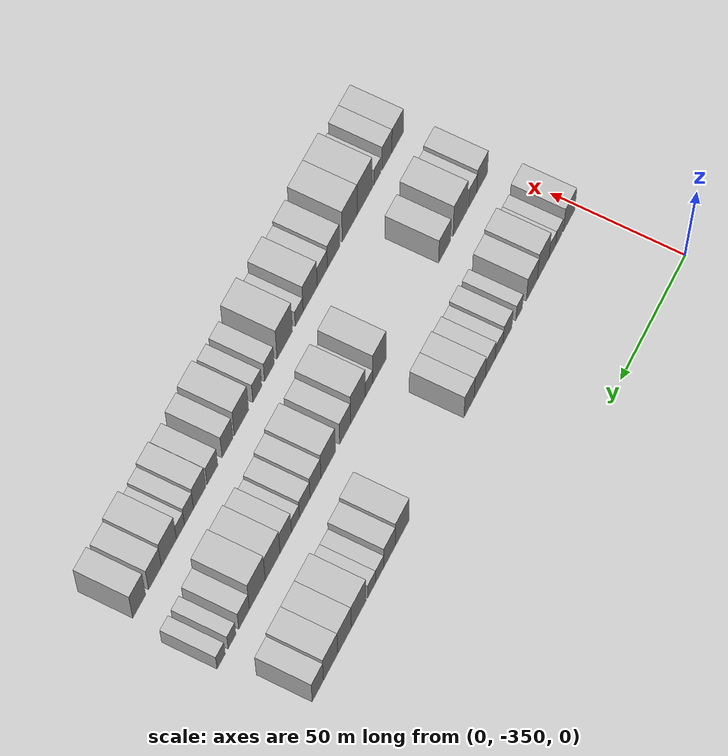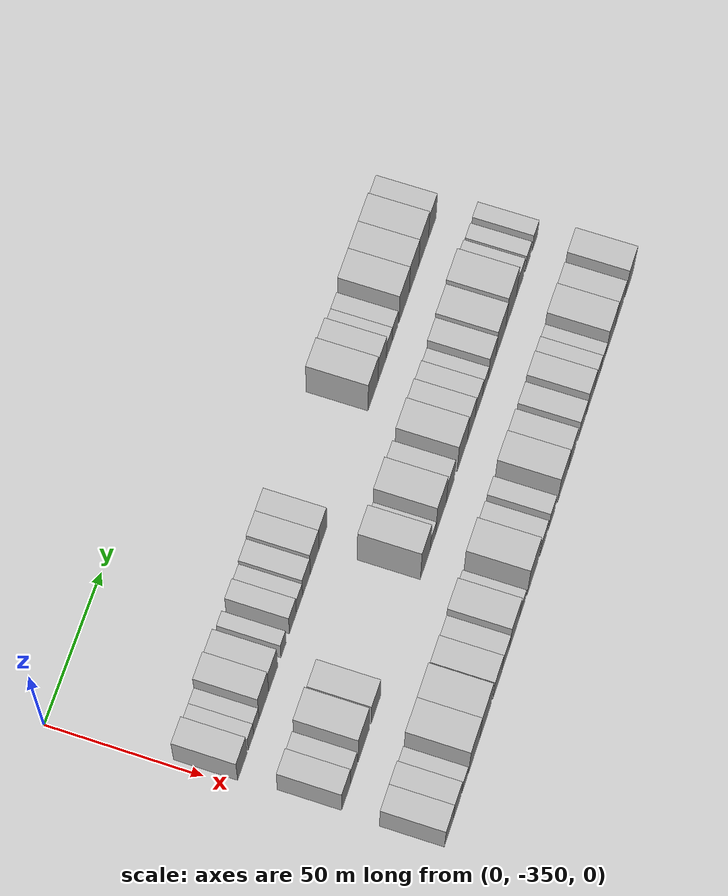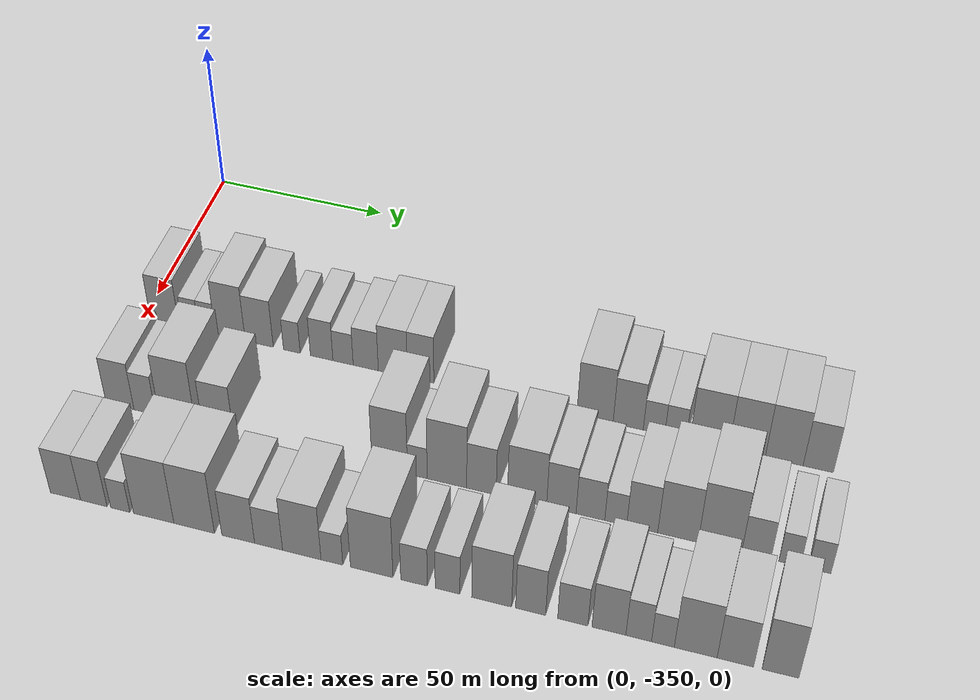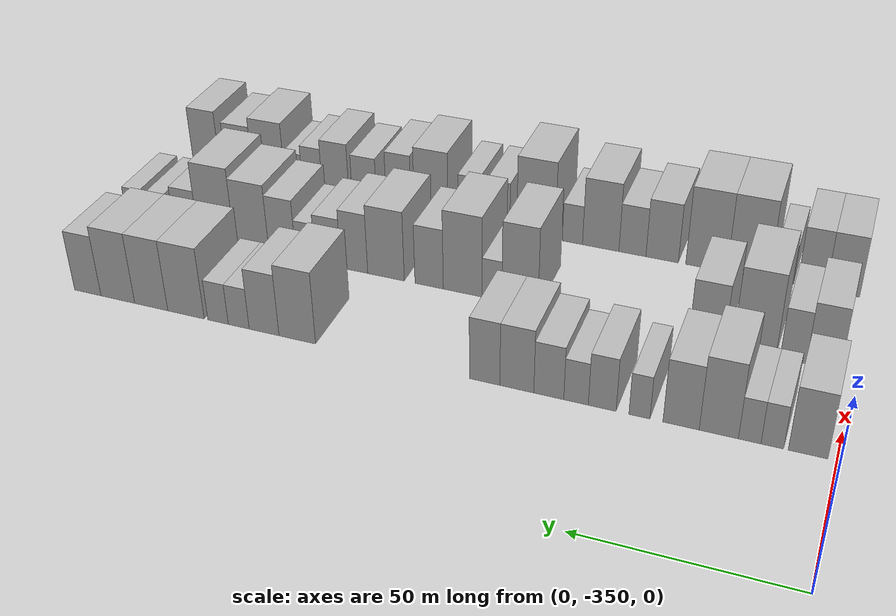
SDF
<sdf version="1.6">
 <world name="default">
  <model name="building_1">
   <static>1</static>
   <pose>50.0000 -343.6873 0 0.000000 0.000000 0.000000</pose>
   <link name="link">
    <pose>0 0 9.00 0 0 0</pose>
    <collision name="collision"><geometry><box><size>20.0000 8.6254 18.0000</size></box></geometry></collision>
    <visual name="visual">
     <cast_shadows>0</cast_shadows>
     <geometry><box><size>20.0000 8.6254 18.0000</size></box></geometry>
     <material>
      <script>
       <uri>model://HANNAS_wall/materials/scripts</uri>
       <uri>model://HANNAS_wall/materials/textures</uri>
       <name>vrc/HANNAS_wall</name>
      </script>
     </material>
    </visual>
   </link>
  </model>
  <model name="building_2">
   <static>1</static>
   <pose>50.0000 -335.8789 0 0.000000 0.000000 0.000000</pose>
   <link name="link">
    <pose>0 0 6.00 0 0 0</pose>
    <collision name="collision"><geometry><box><size>20.0000 4.9914 12.0000</size></box></geometry></collision>
    <visual name="visual">
     <cast_shadows>0</cast_shadows>
     <geometry><box><size>20.0000 4.9914 12.0000</size></box></geometry>
     <material>
      <script>
       <uri>model://HANNAS_wall/materials/scripts</uri>
       <uri>model://HANNAS_wall/materials/textures</uri>
       <name>vrc/HANNAS_wall</name>
      </script>
     </material>
    </visual>
   </link>
  </model>
  <model name="building_3">
   <static>1</static>
   <pose>50.0000 -330.8785 0 0.000000 0.000000 0.000000</pose>
   <link name="link">
    <pose>0 0 6.00 0 0 0</pose>
    <collision name="collision"><geometry><box><size>20.0000 5.0094 12.0000</size></box></geometry></collision>
    <visual name="visual">
     <cast_shadows>0</cast_shadows>
     <geometry><box><size>20.0000 5.0094 12.0000</size></box></geometry>
     <material>
      <script>
       <uri>model://HANNAS_wall/materials/scripts</uri>
       <uri>model://HANNAS_wall/materials/textures</uri>
       <name>vrc/HANNAS_wall</name>
      </script>
     </material>
    </visual>
   </link>
  </model>
  <model name="building_4">
   <static>1</static>
   <pose>50.0000 -323.9568 0 0.000000 0.000000 0.000000</pose>
   <link name="link">
    <pose>0 0 10.50 0 0 0</pose>
    <collision name="collision"><geometry><box><size>20.0000 8.8341 21.0000</size></box></geometry></collision>
    <visual name="visual">
     <cast_shadows>0</cast_shadows>
     <geometry><box><size>20.0000 8.8341 21.0000</size></box></geometry>
     <material>
      <script>
       <uri>model://HANNAS_wall/materials/scripts</uri>
       <uri>model://HANNAS_wall/materials/textures</uri>
       <name>vrc/HANNAS_wall</name>
      </script>
     </material>
    </visual>
   </link>
  </model>
  <model name="building_5">
   <static>1</static>
   <pose>50.0000 -315.3958 0 0.000000 0.000000 0.000000</pose>
   <link name="link">
    <pose>0 0 9.00 0 0 0</pose>
    <collision name="collision"><geometry><box><size>20.0000 8.2878 18.0000</size></box></geometry></collision>
    <visual name="visual">
     <cast_shadows>0</cast_shadows>
     <geometry><box><size>20.0000 8.2878 18.0000</size></box></geometry>
     <material>
      <script>
       <uri>model://HANNAS_wall/materials/scripts</uri>
       <uri>model://HANNAS_wall/materials/textures</uri>
       <name>vrc/HANNAS_wall</name>
      </script>
     </material>
    </visual>
   </link>
  </model>
  <model name="building_6">
   <static>1</static>
   <pose>50.0000 -305.8046 0 0.000000 0.000000 0.000000</pose>
   <link name="link">
    <pose>0 0 6.00 0 0 0</pose>
    <collision name="collision"><geometry><box><size>20.0000 4.8945 12.0000</size></box></geometry></collision>
    <visual name="visual">
     <cast_shadows>0</cast_shadows>
     <geometry><box><size>20.0000 4.8945 12.0000</size></box></geometry>
     <material>
      <script>
       <uri>model://HANNAS_wall/materials/scripts</uri>
       <uri>model://HANNAS_wall/materials/textures</uri>
       <name>vrc/HANNAS_wall</name>
      </script>
     </material>
    </visual>
   </link>
  </model>
  <model name="building_7">
   <static>1</static>
   <pose>50.0000 -297.0753 0 0.000000 0.000000 0.000000</pose>
   <link name="link">
    <pose>0 0 7.50 0 0 0</pose>
    <collision name="collision"><geometry><box><size>20.0000 6.5640 15.0000</size></box></geometry></collision>
    <visual name="visual">
     <cast_shadows>0</cast_shadows>
     <geometry><box><size>20.0000 6.5640 15.0000</size></box></geometry>
     <material>
      <script>
       <uri>model://HANNAS_wall/materials/scripts</uri>
       <uri>model://HANNAS_wall/materials/textures</uri>
       <name>vrc/HANNAS_wall</name>
      </script>
     </material>
    </visual>
   </link>
  </model>
  <model name="building_8">
   <static>1</static>
   <pose>50.0000 -290.8603 0 0.000000 0.000000 0.000000</pose>
   <link name="link">
    <pose>0 0 6.00 0 0 0</pose>
    <collision name="collision"><geometry><box><size>20.0000 5.8660 12.0000</size></box></geometry></collision>
    <visual name="visual">
     <cast_shadows>0</cast_shadows>
     <geometry><box><size>20.0000 5.8660 12.0000</size></box></geometry>
     <material>
      <script>
       <uri>model://HANNAS_wall/materials/scripts</uri>
       <uri>model://HANNAS_wall/materials/textures</uri>
       <name>vrc/HANNAS_wall</name>
      </script>
     </material>
    </visual>
   </link>
  </model>
  <model name="building_9">
   <static>1</static>
   <pose>50.0000 -284.3061 0 0.000000 0.000000 0.000000</pose>
   <link name="link">
    <pose>0 0 7.50 0 0 0</pose>
    <collision name="collision"><geometry><box><size>20.0000 7.2424 15.0000</size></box></geometry></collision>
    <visual name="visual">
     <cast_shadows>0</cast_shadows>
     <geometry><box><size>20.0000 7.2424 15.0000</size></box></geometry>
     <material>
      <script>
       <uri>model://HANNAS_wall/materials/scripts</uri>
       <uri>model://HANNAS_wall/materials/textures</uri>
       <name>vrc/HANNAS_wall</name>
      </script>
     </material>
    </visual>
   </link>
  </model>
  <model name="building_10">
   <static>1</static>
   <pose>50.0000 -276.5179 0 0.000000 0.000000 0.000000</pose>
   <link name="link">
    <pose>0 0 9.00 0 0 0</pose>
    <collision name="collision"><geometry><box><size>20.0000 8.3341 18.0000</size></box></geometry></collision>
    <visual name="visual">
     <cast_shadows>0</cast_shadows>
     <geometry><box><size>20.0000 8.3341 18.0000</size></box></geometry>
     <material>
      <script>
       <uri>model://HANNAS_wall/materials/scripts</uri>
       <uri>model://HANNAS_wall/materials/textures</uri>
       <name>vrc/HANNAS_wall</name>
      </script>
     </material>
    </visual>
   </link>
  </model>
  <model name="building_11">
   <static>1</static>
   <pose>50.0000 -268.5844 0 0.000000 0.000000 0.000000</pose>
   <link name="link">
    <pose>0 0 9.00 0 0 0</pose>
    <collision name="collision"><geometry><box><size>20.0000 7.5328 18.0000</size></box></geometry></collision>
    <visual name="visual">
     <cast_shadows>0</cast_shadows>
     <geometry><box><size>20.0000 7.5328 18.0000</size></box></geometry>
     <material>
      <script>
       <uri>model://HANNAS_wall/materials/scripts</uri>
       <uri>model://HANNAS_wall/materials/textures</uri>
       <name>vrc/HANNAS_wall</name>
      </script>
     </material>
    </visual>
   </link>
  </model>
  <model name="building_12">
   <static>1</static>
   <pose>50.0000 -219.9695 0 0.000000 0.000000 0.000000</pose>
   <link name="link">
    <pose>0 0 10.50 0 0 0</pose>
    <collision name="collision"><geometry><box><size>20.0000 9.8990 21.0000</size></box></geometry></collision>
    <visual name="visual">
     <cast_shadows>0</cast_shadows>
     <geometry><box><size>20.0000 9.8990 21.0000</size></box></geometry>
     <material>
      <script>
       <uri>model://HANNAS_wall/materials/scripts</uri>
       <uri>model://HANNAS_wall/materials/textures</uri>
       <name>vrc/HANNAS_wall</name>
      </script>
     </material>
    </visual>
   </link>
  </model>
  <model name="building_13">
   <static>1</static>
   <pose>50.0000 -210.9266 0 0.000000 0.000000 0.000000</pose>
   <link name="link">
    <pose>0 0 9.00 0 0 0</pose>
    <collision name="collision"><geometry><box><size>20.0000 8.1867 18.0000</size></box></geometry></collision>
    <visual name="visual">
     <cast_shadows>0</cast_shadows>
     <geometry><box><size>20.0000 8.1867 18.0000</size></box></geometry>
     <material>
      <script>
       <uri>model://HANNAS_wall/materials/scripts</uri>
       <uri>model://HANNAS_wall/materials/textures</uri>
       <name>vrc/HANNAS_wall</name>
      </script>
     </material>
    </visual>
   </link>
  </model>
  <model name="building_14">
   <static>1</static>
   <pose>50.0000 -203.9265 0 0.000000 0.000000 0.000000</pose>
   <link name="link">
    <pose>0 0 6.00 0 0 0</pose>
    <collision name="collision"><geometry><box><size>20.0000 5.8134 12.0000</size></box></geometry></collision>
    <visual name="visual">
     <cast_shadows>0</cast_shadows>
     <geometry><box><size>20.0000 5.8134 12.0000</size></box></geometry>
     <material>
      <script>
       <uri>model://HANNAS_wall/materials/scripts</uri>
       <uri>model://HANNAS_wall/materials/textures</uri>
       <name>vrc/HANNAS_wall</name>
      </script>
     </material>
    </visual>
   </link>
  </model>
  <model name="building_15">
   <static>1</static>
   <pose>50.0000 -198.1525 0 0.000000 0.000000 0.000000</pose>
   <link name="link">
    <pose>0 0 6.00 0 0 0</pose>
    <collision name="collision"><geometry><box><size>20.0000 5.7346 12.0000</size></box></geometry></collision>
    <visual name="visual">
     <cast_shadows>0</cast_shadows>
     <geometry><box><size>20.0000 5.7346 12.0000</size></box></geometry>
     <material>
      <script>
       <uri>model://HANNAS_wall/materials/scripts</uri>
       <uri>model://HANNAS_wall/materials/textures</uri>
       <name>vrc/HANNAS_wall</name>
      </script>
     </material>
    </visual>
   </link>
  </model>
  <model name="building_16">
   <static>1</static>
   <pose>50.0000 -189.0835 0 0.000000 0.000000 0.000000</pose>
   <link name="link">
    <pose>0 0 10.50 0 0 0</pose>
    <collision name="collision"><geometry><box><size>20.0000 10.4035 21.0000</size></box></geometry></collision>
    <visual name="visual">
     <cast_shadows>0</cast_shadows>
     <geometry><box><size>20.0000 10.4035 21.0000</size></box></geometry>
     <material>
      <script>
       <uri>model://HANNAS_wall/materials/scripts</uri>
       <uri>model://HANNAS_wall/materials/textures</uri>
       <name>vrc/HANNAS_wall</name>
      </script>
     </material>
    </visual>
   </link>
  </model>
  <model name="building_17">
   <static>1</static>
   <pose>50.0000 -179.0942 0 0.000000 0.000000 0.000000</pose>
   <link name="link">
    <pose>0 0 10.50 0 0 0</pose>
    <collision name="collision"><geometry><box><size>20.0000 9.5750 21.0000</size></box></geometry></collision>
    <visual name="visual">
     <cast_shadows>0</cast_shadows>
     <geometry><box><size>20.0000 9.5750 21.0000</size></box></geometry>
     <material>
      <script>
       <uri>model://HANNAS_wall/materials/scripts</uri>
       <uri>model://HANNAS_wall/materials/textures</uri>
       <name>vrc/HANNAS_wall</name>
      </script>
     </material>
    </visual>
   </link>
  </model>
  <model name="building_18">
   <static>1</static>
   <pose>50.0000 -169.3435 0 0.000000 0.000000 0.000000</pose>
   <link name="link">
    <pose>0 0 10.50 0 0 0</pose>
    <collision name="collision"><geometry><box><size>20.0000 9.9265 21.0000</size></box></geometry></collision>
    <visual name="visual">
     <cast_shadows>0</cast_shadows>
     <geometry><box><size>20.0000 9.9265 21.0000</size></box></geometry>
     <material>
      <script>
       <uri>model://HANNAS_wall/materials/scripts</uri>
       <uri>model://HANNAS_wall/materials/textures</uri>
       <name>vrc/HANNAS_wall</name>
      </script>
     </material>
    </visual>
   </link>
  </model>
  <model name="building_19">
   <static>1</static>
   <pose>50.0000 -160.4506 0 0.000000 0.000000 0.000000</pose>
   <link name="link">
    <pose>0 0 9.00 0 0 0</pose>
    <collision name="collision"><geometry><box><size>20.0000 7.8593 18.0000</size></box></geometry></collision>
    <visual name="visual">
     <cast_shadows>0</cast_shadows>
     <geometry><box><size>20.0000 7.8593 18.0000</size></box></geometry>
     <material>
      <script>
       <uri>model://HANNAS_wall/materials/scripts</uri>
       <uri>model://HANNAS_wall/materials/textures</uri>
       <name>vrc/HANNAS_wall</name>
      </script>
     </material>
    </visual>
   </link>
  </model>
  <model name="building_76">
   <static>1</static>
   <pose>82.0000 -342.9451 0 0.000000 0.000000 0.000000</pose>
   <link name="link">
    <pose>0 0 9.00 0 0 0</pose>
    <collision name="collision"><geometry><box><size>20.0000 8.1097 18.0000</size></box></geometry></collision>
    <visual name="visual">
     <cast_shadows>0</cast_shadows>
     <geometry><box><size>20.0000 8.1097 18.0000</size></box></geometry>
     <material>
      <script>
       <uri>model://HANNAS_wall/materials/scripts</uri>
       <uri>model://HANNAS_wall/materials/textures</uri>
       <name>vrc/HANNAS_wall</name>
      </script>
     </material>
    </visual>
   </link>
  </model>
  <model name="building_77">
   <static>1</static>
   <pose>82.0000 -335.7590 0 0.000000 0.000000 0.000000</pose>
   <link name="link">
    <pose>0 0 7.50 0 0 0</pose>
    <collision name="collision"><geometry><box><size>20.0000 6.2625 15.0000</size></box></geometry></collision>
    <visual name="visual">
     <cast_shadows>0</cast_shadows>
     <geometry><box><size>20.0000 6.2625 15.0000</size></box></geometry>
     <material>
      <script>
       <uri>model://HANNAS_wall/materials/scripts</uri>
       <uri>model://HANNAS_wall/materials/textures</uri>
       <name>vrc/HANNAS_wall</name>
      </script>
     </material>
    </visual>
   </link>
  </model>
  <model name="building_78">
   <static>1</static>
   <pose>82.0000 -326.4272 0 0.000000 0.000000 0.000000</pose>
   <link name="link">
    <pose>0 0 12.00 0 0 0</pose>
    <collision name="collision"><geometry><box><size>20.0000 10.4010 24.0000</size></box></geometry></collision>
    <visual name="visual">
     <cast_shadows>0</cast_shadows>
     <geometry><box><size>20.0000 10.4010 24.0000</size></box></geometry>
     <material>
      <script>
       <uri>model://HANNAS_wall/materials/scripts</uri>
       <uri>model://HANNAS_wall/materials/textures</uri>
       <name>vrc/HANNAS_wall</name>
      </script>
     </material>
    </visual>
   </link>
  </model>
  <model name="building_79">
   <static>1</static>
   <pose>82.0000 -314.8229 0 0.000000 0.000000 0.000000</pose>
   <link name="link">
    <pose>0 0 9.00 0 0 0</pose>
    <collision name="collision"><geometry><box><size>20.0000 8.8075 18.0000</size></box></geometry></collision>
    <visual name="visual">
     <cast_shadows>0</cast_shadows>
     <geometry><box><size>20.0000 8.8075 18.0000</size></box></geometry>
     <material>
      <script>
       <uri>model://HANNAS_wall/materials/scripts</uri>
       <uri>model://HANNAS_wall/materials/textures</uri>
       <name>vrc/HANNAS_wall</name>
      </script>
     </material>
    </visual>
   </link>
  </model>
  <model name="building_80">
   <static>1</static>
   <pose>82.0000 -266.9277 0 0.000000 0.000000 0.000000</pose>
   <link name="link">
    <pose>0 0 12.00 0 0 0</pose>
    <collision name="collision"><geometry><box><size>20.0000 9.6610 24.0000</size></box></geometry></collision>
    <visual name="visual">
     <cast_shadows>0</cast_shadows>
     <geometry><box><size>20.0000 9.6610 24.0000</size></box></geometry>
     <material>
      <script>
       <uri>model://HANNAS_wall/materials/scripts</uri>
       <uri>model://HANNAS_wall/materials/textures</uri>
       <name>vrc/HANNAS_wall</name>
      </script>
     </material>
    </visual>
   </link>
  </model>
  <model name="building_81">
   <static>1</static>
   <pose>82.0000 -259.4279 0 0.000000 0.000000 0.000000</pose>
   <link name="link">
    <pose>0 0 6.00 0 0 0</pose>
    <collision name="collision"><geometry><box><size>20.0000 5.3387 12.0000</size></box></geometry></collision>
    <visual name="visual">
     <cast_shadows>0</cast_shadows>
     <geometry><box><size>20.0000 5.3387 12.0000</size></box></geometry>
     <material>
      <script>
       <uri>model://HANNAS_wall/materials/scripts</uri>
       <uri>model://HANNAS_wall/materials/textures</uri>
       <name>vrc/HANNAS_wall</name>
      </script>
     </material>
    </visual>
   </link>
  </model>
  <model name="building_82">
   <static>1</static>
   <pose>82.0000 -251.4545 0 0.000000 0.000000 0.000000</pose>
   <link name="link">
    <pose>0 0 12.00 0 0 0</pose>
    <collision name="collision"><geometry><box><size>20.0000 10.6079 24.0000</size></box></geometry></collision>
    <visual name="visual">
     <cast_shadows>0</cast_shadows>
     <geometry><box><size>20.0000 10.6079 24.0000</size></box></geometry>
     <material>
      <script>
       <uri>model://HANNAS_wall/materials/scripts</uri>
       <uri>model://HANNAS_wall/materials/textures</uri>
       <name>vrc/HANNAS_wall</name>
      </script>
     </material>
    </visual>
   </link>
  </model>
  <model name="building_83">
   <static>1</static>
   <pose>82.0000 -242.2172 0 0.000000 0.000000 0.000000</pose>
   <link name="link">
    <pose>0 0 9.00 0 0 0</pose>
    <collision name="collision"><geometry><box><size>20.0000 7.8668 18.0000</size></box></geometry></collision>
    <visual name="visual">
     <cast_shadows>0</cast_shadows>
     <geometry><box><size>20.0000 7.8668 18.0000</size></box></geometry>
     <material>
      <script>
       <uri>model://HANNAS_wall/materials/scripts</uri>
       <uri>model://HANNAS_wall/materials/textures</uri>
       <name>vrc/HANNAS_wall</name>
      </script>
     </material>
    </visual>
   </link>
  </model>
  <model name="building_84">
   <static>1</static>
   <pose>82.0000 -230.1115 0 0.000000 0.000000 0.000000</pose>
   <link name="link">
    <pose>0 0 10.50 0 0 0</pose>
    <collision name="collision"><geometry><box><size>20.0000 10.3445 21.0000</size></box></geometry></collision>
    <visual name="visual">
     <cast_shadows>0</cast_shadows>
     <geometry><box><size>20.0000 10.3445 21.0000</size></box></geometry>
     <material>
      <script>
       <uri>model://HANNAS_wall/materials/scripts</uri>
       <uri>model://HANNAS_wall/materials/textures</uri>
       <name>vrc/HANNAS_wall</name>
      </script>
     </material>
    </visual>
   </link>
  </model>
  <model name="building_85">
   <static>1</static>
   <pose>82.0000 -221.0768 0 0.000000 0.000000 0.000000</pose>
   <link name="link">
    <pose>0 0 9.00 0 0 0</pose>
    <collision name="collision"><geometry><box><size>20.0000 7.7249 18.0000</size></box></geometry></collision>
    <visual name="visual">
     <cast_shadows>0</cast_shadows>
     <geometry><box><size>20.0000 7.7249 18.0000</size></box></geometry>
     <material>
      <script>
       <uri>model://HANNAS_wall/materials/scripts</uri>
       <uri>model://HANNAS_wall/materials/textures</uri>
       <name>vrc/HANNAS_wall</name>
      </script>
     </material>
    </visual>
   </link>
  </model>
  <model name="building_86">
   <static>1</static>
   <pose>82.0000 -213.4769 0 0.000000 0.000000 0.000000</pose>
   <link name="link">
    <pose>0 0 7.50 0 0 0</pose>
    <collision name="collision"><geometry><box><size>20.0000 7.4748 15.0000</size></box></geometry></collision>
    <visual name="visual">
     <cast_shadows>0</cast_shadows>
     <geometry><box><size>20.0000 7.4748 15.0000</size></box></geometry>
     <material>
      <script>
       <uri>model://HANNAS_wall/materials/scripts</uri>
       <uri>model://HANNAS_wall/materials/textures</uri>
       <name>vrc/HANNAS_wall</name>
      </script>
     </material>
    </visual>
   </link>
  </model>
  <model name="building_87">
   <static>1</static>
   <pose>82.0000 -206.9055 0 0.000000 0.000000 0.000000</pose>
   <link name="link">
    <pose>0 0 6.00 0 0 0</pose>
    <collision name="collision"><geometry><box><size>20.0000 5.6679 12.0000</size></box></geometry></collision>
    <visual name="visual">
     <cast_shadows>0</cast_shadows>
     <geometry><box><size>20.0000 5.6679 12.0000</size></box></geometry>
     <material>
      <script>
       <uri>model://HANNAS_wall/materials/scripts</uri>
       <uri>model://HANNAS_wall/materials/textures</uri>
       <name>vrc/HANNAS_wall</name>
      </script>
     </material>
    </visual>
   </link>
  </model>
  <model name="building_88">
   <static>1</static>
   <pose>82.0000 -200.0838 0 0.000000 0.000000 0.000000</pose>
   <link name="link">
    <pose>0 0 9.00 0 0 0</pose>
    <collision name="collision"><geometry><box><size>20.0000 7.9754 18.0000</size></box></geometry></collision>
    <visual name="visual">
     <cast_shadows>0</cast_shadows>
     <geometry><box><size>20.0000 7.9754 18.0000</size></box></geometry>
     <material>
      <script>
       <uri>model://HANNAS_wall/materials/scripts</uri>
       <uri>model://HANNAS_wall/materials/textures</uri>
       <name>vrc/HANNAS_wall</name>
      </script>
     </material>
    </visual>
   </link>
  </model>
  <model name="building_89">
   <static>1</static>
   <pose>82.0000 -190.9400 0 0.000000 0.000000 0.000000</pose>
   <link name="link">
    <pose>0 0 10.50 0 0 0</pose>
    <collision name="collision"><geometry><box><size>20.0000 10.3121 21.0000</size></box></geometry></collision>
    <visual name="visual">
     <cast_shadows>0</cast_shadows>
     <geometry><box><size>20.0000 10.3121 21.0000</size></box></geometry>
     <material>
      <script>
       <uri>model://HANNAS_wall/materials/scripts</uri>
       <uri>model://HANNAS_wall/materials/textures</uri>
       <name>vrc/HANNAS_wall</name>
      </script>
     </material>
    </visual>
   </link>
  </model>
  <model name="building_90">
   <static>1</static>
   <pose>82.0000 -180.2757 0 0.000000 0.000000 0.000000</pose>
   <link name="link">
    <pose>0 0 12.00 0 0 0</pose>
    <collision name="collision"><geometry><box><size>20.0000 11.0167 24.0000</size></box></geometry></collision>
    <visual name="visual">
     <cast_shadows>0</cast_shadows>
     <geometry><box><size>20.0000 11.0167 24.0000</size></box></geometry>
     <material>
      <script>
       <uri>model://HANNAS_wall/materials/scripts</uri>
       <uri>model://HANNAS_wall/materials/textures</uri>
       <name>vrc/HANNAS_wall</name>
      </script>
     </material>
    </visual>
   </link>
  </model>
  <model name="building_91">
   <static>1</static>
   <pose>82.0000 -171.1097 0 0.000000 0.000000 0.000000</pose>
   <link name="link">
    <pose>0 0 7.50 0 0 0</pose>
    <collision name="collision"><geometry><box><size>20.0000 7.3153 15.0000</size></box></geometry></collision>
    <visual name="visual">
     <cast_shadows>0</cast_shadows>
     <geometry><box><size>20.0000 7.3153 15.0000</size></box></geometry>
     <material>
      <script>
       <uri>model://HANNAS_wall/materials/scripts</uri>
       <uri>model://HANNAS_wall/materials/textures</uri>
       <name>vrc/HANNAS_wall</name>
      </script>
     </material>
    </visual>
   </link>
  </model>
  <model name="building_92">
   <static>1</static>
   <pose>82.0000 -162.7791 0 0.000000 0.000000 0.000000</pose>
   <link name="link">
    <pose>0 0 6.00 0 0 0</pose>
    <collision name="collision"><geometry><box><size>20.0000 5.3459 12.0000</size></box></geometry></collision>
    <visual name="visual">
     <cast_shadows>0</cast_shadows>
     <geometry><box><size>20.0000 5.3459 12.0000</size></box></geometry>
     <material>
      <script>
       <uri>model://HANNAS_wall/materials/scripts</uri>
       <uri>model://HANNAS_wall/materials/textures</uri>
       <name>vrc/HANNAS_wall</name>
      </script>
     </material>
    </visual>
   </link>
  </model>
  <model name="building_93">
   <static>1</static>
   <pose>82.0000 -155.3206 0 0.000000 0.000000 0.000000</pose>
   <link name="link">
    <pose>0 0 6.00 0 0 0</pose>
    <collision name="collision"><geometry><box><size>20.0000 5.5711 12.0000</size></box></geometry></collision>
    <visual name="visual">
     <cast_shadows>0</cast_shadows>
     <geometry><box><size>20.0000 5.5711 12.0000</size></box></geometry>
     <material>
      <script>
       <uri>model://HANNAS_wall/materials/scripts</uri>
       <uri>model://HANNAS_wall/materials/textures</uri>
       <name>vrc/HANNAS_wall</name>
      </script>
     </material>
    </visual>
   </link>
  </model>
  <model name="building_153">
   <static>1</static>
   <pose>114.0000 -343.7625 0 0.000000 0.000000 0.000000</pose>
   <link name="link">
    <pose>0 0 9.00 0 0 0</pose>
    <collision name="collision"><geometry><box><size>20.0000 8.4751 18.0000</size></box></geometry></collision>
    <visual name="visual">
     <cast_shadows>0</cast_shadows>
     <geometry><box><size>20.0000 8.4751 18.0000</size></box></geometry>
     <material>
      <script>
       <uri>model://HANNAS_wall/materials/scripts</uri>
       <uri>model://HANNAS_wall/materials/textures</uri>
       <name>vrc/HANNAS_wall</name>
      </script>
     </material>
    </visual>
   </link>
  </model>
  <model name="building_154">
   <static>1</static>
   <pose>114.0000 -335.8613 0 0.000000 0.000000 0.000000</pose>
   <link name="link">
    <pose>0 0 9.00 0 0 0</pose>
    <collision name="collision"><geometry><box><size>20.0000 7.3272 18.0000</size></box></geometry></collision>
    <visual name="visual">
     <cast_shadows>0</cast_shadows>
     <geometry><box><size>20.0000 7.3272 18.0000</size></box></geometry>
     <material>
      <script>
       <uri>model://HANNAS_wall/materials/scripts</uri>
       <uri>model://HANNAS_wall/materials/textures</uri>
       <name>vrc/HANNAS_wall</name>
      </script>
     </material>
    </visual>
   </link>
  </model>
  <model name="building_155">
   <static>1</static>
   <pose>114.0000 -328.5517 0 0.000000 0.000000 0.000000</pose>
   <link name="link">
    <pose>0 0 6.00 0 0 0</pose>
    <collision name="collision"><geometry><box><size>20.0000 5.2921 12.0000</size></box></geometry></collision>
    <visual name="visual">
     <cast_shadows>0</cast_shadows>
     <geometry><box><size>20.0000 5.2921 12.0000</size></box></geometry>
     <material>
      <script>
       <uri>model://HANNAS_wall/materials/scripts</uri>
       <uri>model://HANNAS_wall/materials/textures</uri>
       <name>vrc/HANNAS_wall</name>
      </script>
     </material>
    </visual>
   </link>
  </model>
  <model name="building_156">
   <static>1</static>
   <pose>114.0000 -319.3706 0 0.000000 0.000000 0.000000</pose>
   <link name="link">
    <pose>0 0 12.00 0 0 0</pose>
    <collision name="collision"><geometry><box><size>20.0000 11.0702 24.0000</size></box></geometry></collision>
    <visual name="visual">
     <cast_shadows>0</cast_shadows>
     <geometry><box><size>20.0000 11.0702 24.0000</size></box></geometry>
     <material>
      <script>
       <uri>model://HANNAS_wall/materials/scripts</uri>
       <uri>model://HANNAS_wall/materials/textures</uri>
       <name>vrc/HANNAS_wall</name>
      </script>
     </material>
    </visual>
   </link>
  </model>
  <model name="building_157">
   <static>1</static>
   <pose>114.0000 -308.3364 0 0.000000 0.000000 0.000000</pose>
   <link name="link">
    <pose>0 0 12.00 0 0 0</pose>
    <collision name="collision"><geometry><box><size>20.0000 10.9980 24.0000</size></box></geometry></collision>
    <visual name="visual">
     <cast_shadows>0</cast_shadows>
     <geometry><box><size>20.0000 10.9980 24.0000</size></box></geometry>
     <material>
      <script>
       <uri>model://HANNAS_wall/materials/scripts</uri>
       <uri>model://HANNAS_wall/materials/textures</uri>
       <name>vrc/HANNAS_wall</name>
      </script>
     </material>
    </visual>
   </link>
  </model>
  <model name="building_158">
   <static>1</static>
   <pose>114.0000 -296.4344 0 0.000000 0.000000 0.000000</pose>
   <link name="link">
    <pose>0 0 9.00 0 0 0</pose>
    <collision name="collision"><geometry><box><size>20.0000 8.8060 18.0000</size></box></geometry></collision>
    <visual name="visual">
     <cast_shadows>0</cast_shadows>
     <geometry><box><size>20.0000 8.8060 18.0000</size></box></geometry>
     <material>
      <script>
       <uri>model://HANNAS_wall/materials/scripts</uri>
       <uri>model://HANNAS_wall/materials/textures</uri>
       <name>vrc/HANNAS_wall</name>
      </script>
     </material>
    </visual>
   </link>
  </model>
  <model name="building_159">
   <static>1</static>
   <pose>114.0000 -288.3090 0 0.000000 0.000000 0.000000</pose>
   <link name="link">
    <pose>0 0 7.50 0 0 0</pose>
    <collision name="collision"><geometry><box><size>20.0000 7.4449 15.0000</size></box></geometry></collision>
    <visual name="visual">
     <cast_shadows>0</cast_shadows>
     <geometry><box><size>20.0000 7.4449 15.0000</size></box></geometry>
     <material>
      <script>
       <uri>model://HANNAS_wall/materials/scripts</uri>
       <uri>model://HANNAS_wall/materials/textures</uri>
       <name>vrc/HANNAS_wall</name>
      </script>
     </material>
    </visual>
   </link>
  </model>
  <model name="building_160">
   <static>1</static>
   <pose>114.0000 -279.5059 0 0.000000 0.000000 0.000000</pose>
   <link name="link">
    <pose>0 0 10.50 0 0 0</pose>
    <collision name="collision"><geometry><box><size>20.0000 10.1613 21.0000</size></box></geometry></collision>
    <visual name="visual">
     <cast_shadows>0</cast_shadows>
     <geometry><box><size>20.0000 10.1613 21.0000</size></box></geometry>
     <material>
      <script>
       <uri>model://HANNAS_wall/materials/scripts</uri>
       <uri>model://HANNAS_wall/materials/textures</uri>
       <name>vrc/HANNAS_wall</name>
      </script>
     </material>
    </visual>
   </link>
  </model>
  <model name="building_161">
   <static>1</static>
   <pose>114.0000 -271.5645 0 0.000000 0.000000 0.000000</pose>
   <link name="link">
    <pose>0 0 6.00 0 0 0</pose>
    <collision name="collision"><geometry><box><size>20.0000 5.7215 12.0000</size></box></geometry></collision>
    <visual name="visual">
     <cast_shadows>0</cast_shadows>
     <geometry><box><size>20.0000 5.7215 12.0000</size></box></geometry>
     <material>
      <script>
       <uri>model://HANNAS_wall/materials/scripts</uri>
       <uri>model://HANNAS_wall/materials/textures</uri>
       <name>vrc/HANNAS_wall</name>
      </script>
     </material>
    </visual>
   </link>
  </model>
  <model name="building_162">
   <static>1</static>
   <pose>114.0000 -261.1748 0 0.000000 0.000000 0.000000</pose>
   <link name="link">
    <pose>0 0 12.00 0 0 0</pose>
    <collision name="collision"><geometry><box><size>20.0000 11.0579 24.0000</size></box></geometry></collision>
    <visual name="visual">
     <cast_shadows>0</cast_shadows>
     <geometry><box><size>20.0000 11.0579 24.0000</size></box></geometry>
     <material>
      <script>
       <uri>model://HANNAS_wall/materials/scripts</uri>
       <uri>model://HANNAS_wall/materials/textures</uri>
       <name>vrc/HANNAS_wall</name>
      </script>
     </material>
    </visual>
   </link>
  </model>
  <model name="building_163">
   <static>1</static>
   <pose>114.0000 -250.2174 0 0.000000 0.000000 0.000000</pose>
   <link name="link">
    <pose>0 0 7.50 0 0 0</pose>
    <collision name="collision"><geometry><box><size>20.0000 6.8568 15.0000</size></box></geometry></collision>
    <visual name="visual">
     <cast_shadows>0</cast_shadows>
     <geometry><box><size>20.0000 6.8568 15.0000</size></box></geometry>
     <material>
      <script>
       <uri>model://HANNAS_wall/materials/scripts</uri>
       <uri>model://HANNAS_wall/materials/textures</uri>
       <name>vrc/HANNAS_wall</name>
      </script>
     </material>
    </visual>
   </link>
  </model>
  <model name="building_164">
   <static>1</static>
   <pose>114.0000 -241.6384 0 0.000000 0.000000 0.000000</pose>
   <link name="link">
    <pose>0 0 7.50 0 0 0</pose>
    <collision name="collision"><geometry><box><size>20.0000 6.3014 15.0000</size></box></geometry></collision>
    <visual name="visual">
     <cast_shadows>0</cast_shadows>
     <geometry><box><size>20.0000 6.3014 15.0000</size></box></geometry>
     <material>
      <script>
       <uri>model://HANNAS_wall/materials/scripts</uri>
       <uri>model://HANNAS_wall/materials/textures</uri>
       <name>vrc/HANNAS_wall</name>
      </script>
     </material>
    </visual>
   </link>
  </model>
  <model name="building_165">
   <static>1</static>
   <pose>114.0000 -230.4397 0 0.000000 0.000000 0.000000</pose>
   <link name="link">
    <pose>0 0 10.50 0 0 0</pose>
    <collision name="collision"><geometry><box><size>20.0000 10.0960 21.0000</size></box></geometry></collision>
    <visual name="visual">
     <cast_shadows>0</cast_shadows>
     <geometry><box><size>20.0000 10.0960 21.0000</size></box></geometry>
     <material>
      <script>
       <uri>model://HANNAS_wall/materials/scripts</uri>
       <uri>model://HANNAS_wall/materials/textures</uri>
       <name>vrc/HANNAS_wall</name>
      </script>
     </material>
    </visual>
   </link>
  </model>
  <model name="building_166">
   <static>1</static>
   <pose>114.0000 -220.6258 0 0.000000 0.000000 0.000000</pose>
   <link name="link">
    <pose>0 0 9.00 0 0 0</pose>
    <collision name="collision"><geometry><box><size>20.0000 7.5319 18.0000</size></box></geometry></collision>
    <visual name="visual">
     <cast_shadows>0</cast_shadows>
     <geometry><box><size>20.0000 7.5319 18.0000</size></box></geometry>
     <material>
      <script>
       <uri>model://HANNAS_wall/materials/scripts</uri>
       <uri>model://HANNAS_wall/materials/textures</uri>
       <name>vrc/HANNAS_wall</name>
      </script>
     </material>
    </visual>
   </link>
  </model>
  <model name="building_167">
   <static>1</static>
   <pose>114.0000 -210.1165 0 0.000000 0.000000 0.000000</pose>
   <link name="link">
    <pose>0 0 7.50 0 0 0</pose>
    <collision name="collision"><geometry><box><size>20.0000 7.4866 15.0000</size></box></geometry></collision>
    <visual name="visual">
     <cast_shadows>0</cast_shadows>
     <geometry><box><size>20.0000 7.4866 15.0000</size></box></geometry>
     <material>
      <script>
       <uri>model://HANNAS_wall/materials/scripts</uri>
       <uri>model://HANNAS_wall/materials/textures</uri>
       <name>vrc/HANNAS_wall</name>
      </script>
     </material>
    </visual>
   </link>
  </model>
  <model name="building_168">
   <static>1</static>
   <pose>114.0000 -201.2043 0 0.000000 0.000000 0.000000</pose>
   <link name="link">
    <pose>0 0 9.00 0 0 0</pose>
    <collision name="collision"><geometry><box><size>20.0000 8.3377 18.0000</size></box></geometry></collision>
    <visual name="visual">
     <cast_shadows>0</cast_shadows>
     <geometry><box><size>20.0000 8.3377 18.0000</size></box></geometry>
     <material>
      <script>
       <uri>model://HANNAS_wall/materials/scripts</uri>
       <uri>model://HANNAS_wall/materials/textures</uri>
       <name>vrc/HANNAS_wall</name>
      </script>
     </material>
    </visual>
   </link>
  </model>
  <model name="building_169">
   <static>1</static>
   <pose>114.0000 -193.9066 0 0.000000 0.000000 0.000000</pose>
   <link name="link">
    <pose>0 0 7.50 0 0 0</pose>
    <collision name="collision"><geometry><box><size>20.0000 6.2577 15.0000</size></box></geometry></collision>
    <visual name="visual">
     <cast_shadows>0</cast_shadows>
     <geometry><box><size>20.0000 6.2577 15.0000</size></box></geometry>
     <material>
      <script>
       <uri>model://HANNAS_wall/materials/scripts</uri>
       <uri>model://HANNAS_wall/materials/textures</uri>
       <name>vrc/HANNAS_wall</name>
      </script>
     </material>
    </visual>
   </link>
  </model>
  <model name="building_170">
   <static>1</static>
   <pose>114.0000 -188.0047 0 0.000000 0.000000 0.000000</pose>
   <link name="link">
    <pose>0 0 6.00 0 0 0</pose>
    <collision name="collision"><geometry><box><size>20.0000 5.5461 12.0000</size></box></geometry></collision>
    <visual name="visual">
     <cast_shadows>0</cast_shadows>
     <geometry><box><size>20.0000 5.5461 12.0000</size></box></geometry>
     <material>
      <script>
       <uri>model://HANNAS_wall/materials/scripts</uri>
       <uri>model://HANNAS_wall/materials/textures</uri>
       <name>vrc/HANNAS_wall</name>
      </script>
     </material>
    </visual>
   </link>
  </model>
  <model name="building_171">
   <static>1</static>
   <pose>114.0000 -180.0662 0 0.000000 0.000000 0.000000</pose>
   <link name="link">
    <pose>0 0 10.50 0 0 0</pose>
    <collision name="collision"><geometry><box><size>20.0000 10.3310 21.0000</size></box></geometry></collision>
    <visual name="visual">
     <cast_shadows>0</cast_shadows>
     <geometry><box><size>20.0000 10.3310 21.0000</size></box></geometry>
     <material>
      <script>
       <uri>model://HANNAS_wall/materials/scripts</uri>
       <uri>model://HANNAS_wall/materials/textures</uri>
       <name>vrc/HANNAS_wall</name>
      </script>
     </material>
    </visual>
   </link>
  </model>
  <model name="building_172">
   <static>1</static>
   <pose>114.0000 -170.5269 0 0.000000 0.000000 0.000000</pose>
   <link name="link">
    <pose>0 0 9.00 0 0 0</pose>
    <collision name="collision"><geometry><box><size>20.0000 8.7475 18.0000</size></box></geometry></collision>
    <visual name="visual">
     <cast_shadows>0</cast_shadows>
     <geometry><box><size>20.0000 8.7475 18.0000</size></box></geometry>
     <material>
      <script>
       <uri>model://HANNAS_wall/materials/scripts</uri>
       <uri>model://HANNAS_wall/materials/textures</uri>
       <name>vrc/HANNAS_wall</name>
      </script>
     </material>
    </visual>
   </link>
  </model>
  <model name="building_173">
   <static>1</static>
   <pose>114.0000 -159.7950 0 0.000000 0.000000 0.000000</pose>
   <link name="link">
    <pose>0 0 10.50 0 0 0</pose>
    <collision name="collision"><geometry><box><size>20.0000 8.7162 21.0000</size></box></geometry></collision>
    <visual name="visual">
     <cast_shadows>0</cast_shadows>
     <geometry><box><size>20.0000 8.7162 21.0000</size></box></geometry>
     <material>
      <script>
       <uri>model://HANNAS_wall/materials/scripts</uri>
       <uri>model://HANNAS_wall/materials/textures</uri>
       <name>vrc/HANNAS_wall</name>
      </script>
     </material>
    </visual>
   </link>
  </model>
 </world>
</sdf>
